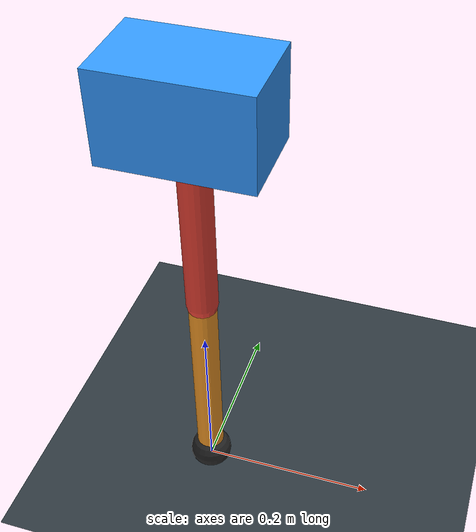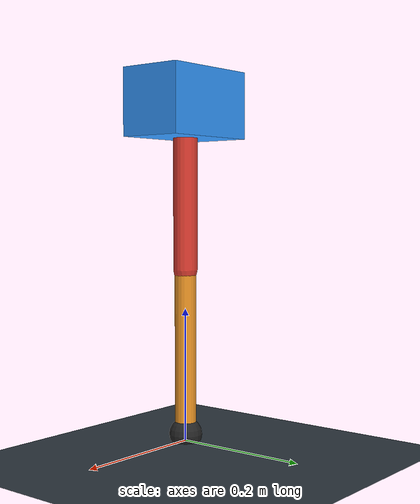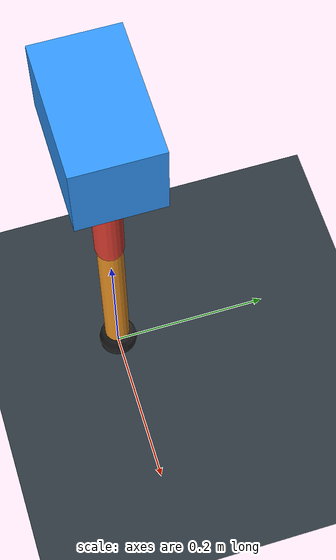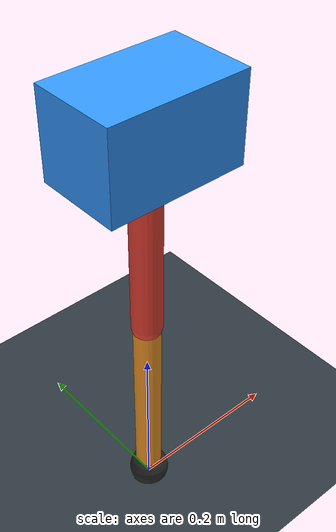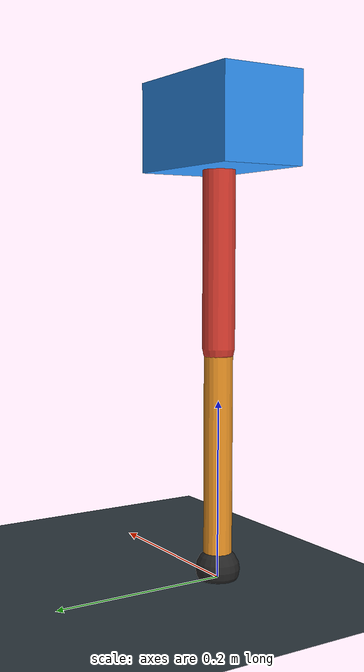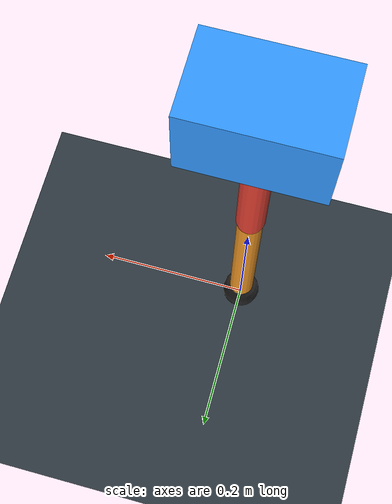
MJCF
<mujoco model="single_axis_two_bar">
  <compiler angle="radian" inertiafromgeom="true"/>
  <option timestep="0.001" integrator="implicitfast" gravity="0 0 -9.81"/>
  <default>
    <joint damping="0.08"/>
    <geom friction="1.2 0.01 0.0001" condim="3"/>
  </default>
  <worldbody>
    <geom name="floor" type="plane" size="5 5 0.1" rgba="0.18 0.22 0.25 1"/>
    <body name="carriage" pos="0 0 0.5046441100651252">
      <joint name="pole_slide" type="slide" axis="0 0 1"/>
      <geom name="payload" type="box" size="0.08 0.05 0.05" mass="2.9943638624741906" rgba="0.2 0.6 1 1"/>
      <body name="thigh" pos="0 0 0">
        <joint name="hip" type="hinge" axis="0 1 0"/>
        <geom name="thigh_link" type="capsule" fromto="0 0 0 0 0 -0.2463615659748672" size="0.018" mass="0.1755358711379703" rgba="0.9 0.25 0.2 1"/>
        <body name="shank" pos="0 0 -0.2463615659748672">
          <joint name="knee" type="hinge" axis="0 1 0"/>
          <geom name="shank_link" type="capsule" fromto="0 0 0 0 0 -0.24811689800979803" size="0.016" mass="0.17678656840752494" rgba="0.95 0.6 0.15 1"/>
          <geom name="foot" type="sphere" pos="0 0 -0.24811689800979803" size="0.025" mass="0.03" rgba="0.15 0.15 0.15 1"/>
          <site name="toe" pos="0 0 -0.24811689800979803" size="0.008"/>
        </body>
      </body>
    </body>
  </worldbody>
  <actuator>
    <motor name="hip_motor" joint="hip" ctrlrange="-21.057396699318364 21.057396699318364"/>
    <motor name="knee_motor" joint="knee" ctrlrange="-51.38945967150272 51.38945967150272"/>
  </actuator>
</mujoco>
